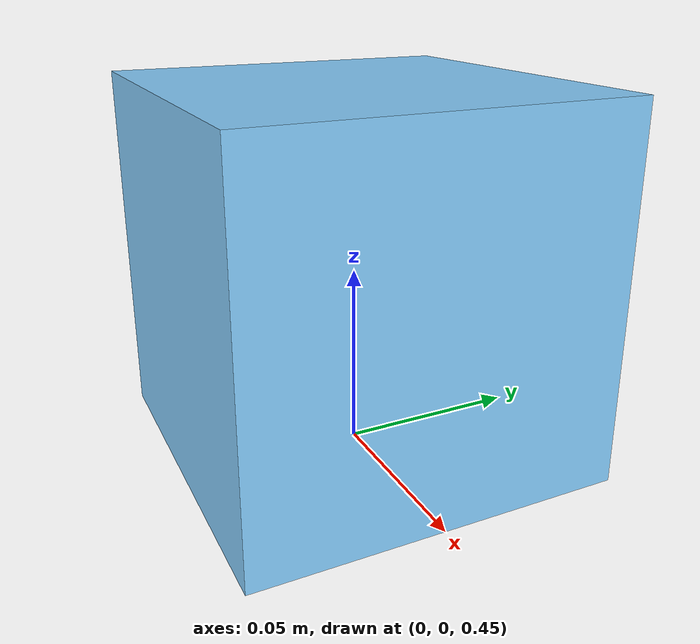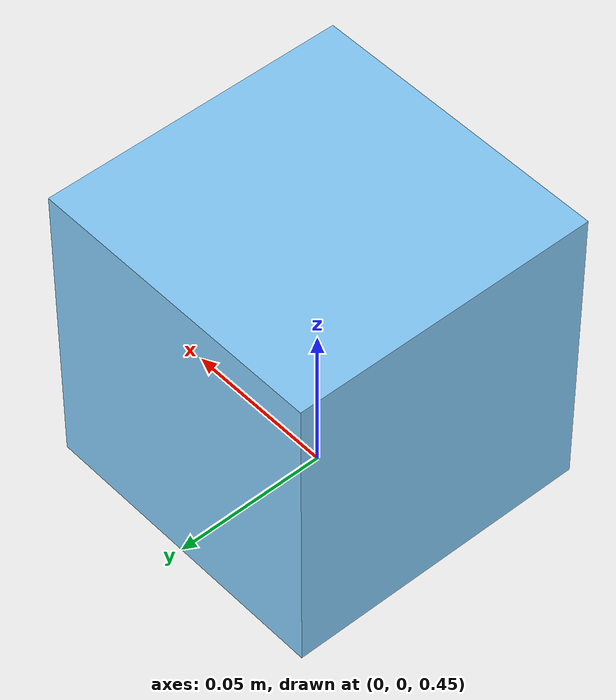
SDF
<?xml version="1.0" ?>
<sdf version="1.6">
    <world name="default">

        <include>
            <uri>model://sun</uri>
        </include>

        <include>
            <uri>model://ground_plane</uri>
        </include>

        <include>
            <uri>model://car/car_camera</uri>
        </include>

    </world>
</sdf>

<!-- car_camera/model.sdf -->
<sdf version="1.5">
    <model name="car_camera">
        <pose>0 0 0.5 0 0 3.14</pose>
        <static>true</static>
        <link name="link">
            <inertial>
                <mass>0.1</mass>
                <inertia>
                    <ixx>0.000166667</ixx>
                    <iyy>0.000166667</iyy>
                    <izz>0.000166667</izz>
                </inertia>
            </inertial>
            <collision name="collision">
                <geometry>
                    <box>
                        <size>0.1 0.1 0.1</size>
                    </box>
                </geometry>
            </collision>
            <visual name="visual">
                <material>
                    <diffuse> 0.52 0.8 0.98 1 </diffuse>
                    <specular> 0.2 0.2 0.2 0  </specular>
                    <emissive> 0 0 0 1 </emissive>
                    <ambient> 0.114 0.16 0.196 1 </ambient>
                </material>
                <geometry>
                    <box>
                        <size>0.1 0.1 0.1</size>
                    </box>
                </geometry>
            </visual>
            <sensor type="camera" name="car_camera">
                <update_rate>24</update_rate>
                <visualize>true</visualize>
                <camera name="head">
                    <horizontal_fov>1.3962634</horizontal_fov>
                    <image>
                        <width>640</width>
                        <height>480</height>
                        <format>R8G8B8</format>
                    </image>
                    <clip>
                        <near>0.02</near>
                        <far>300</far>
                    </clip>
                </camera>
                <plugin name="camera_controller" filename="libgazebo_ros_camera.so">
                    <ros>
                        <argument>--ros-args --remap image_raw:=image_raw</argument>
                        <argument>--ros-args --remap camera_info:=camera_info</argument>
                    </ros>
                </plugin>
            </sensor>
        </link>
    </model>
</sdf>
